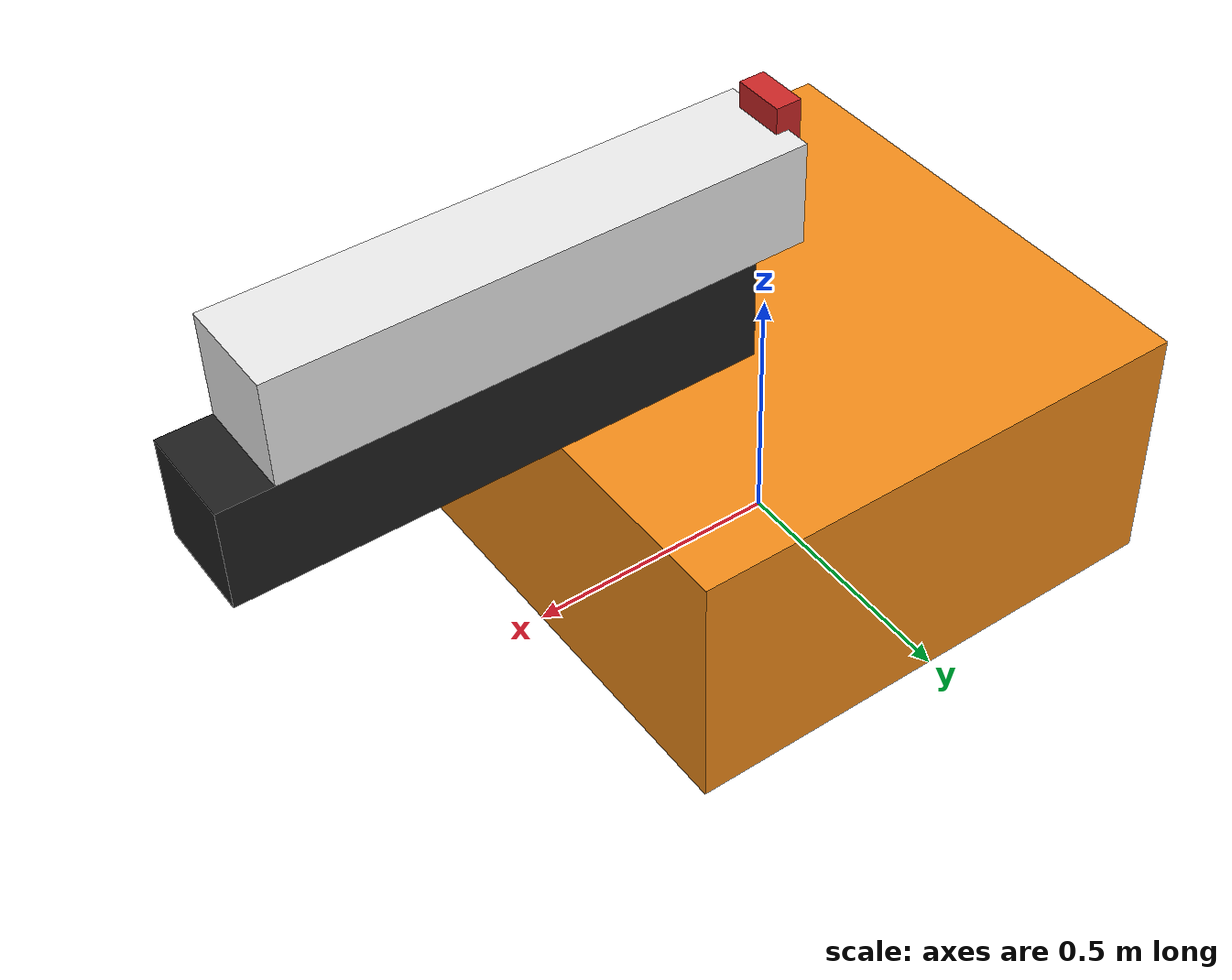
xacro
<?xml version="1.0"?>

<robot xmlns:xacro="http://www.ros.org/wiki/xacro" name="two_dof_arm">

    <xacro:property name="PI" value="3.1415926535897931"/>
    <xacro:property name="mass1" value="10" /> <!-- arbitrary value for mass -->
    <xacro:property name="width1" value="1.0" /> <!-- Square dimensions (widthxwidth) of beams -->
    <xacro:property name="height1" value="0.5" /> <!-- Base Link -->

    <xacro:include filename="$(find two_dof_arm)/urdf/links.xacro"/>
    <xacro:include filename="$(find two_dof_arm)/urdf/camera.xacro"/>
    <xacro:include filename="$(find two_dof_arm)/urdf/colors.gazebo" />

    <link name="world"></link>

    <joint name="base_joint" type="fixed">
        <parent link="world"/>
        <child link="base_link"/>

    </joint>

    <link name="base_link">
        <inertial>
            <origin xyz="0.0 0.0 ${height1/2}" rpy="0.0 0.0 0.0"/>
            <mass value="${mass1}"/>
            <inertia
                ixx="${mass1 / 12.0 * (width1*width1 + height1*height1)}" ixy="0.0" ixz="0.0"
                iyy="${mass1 / 12.0 * (height1*height1 + width1*width1)}" iyz="0.0"
                izz="${mass1 / 12.0 * (width1*width1 + width1*width1)}"/>
        </inertial>
        <visual name="">
            <origin xyz="0.0 0.0 ${height1/2}" rpy="0.0 0.0 0.0"/>
            <geometry>
                <box size="${width1} ${width1} ${height1}"/>
            </geometry>
            <material name="orange"/>
        </visual>
        <collision>
            <origin xyz="0.0 0.0 ${height1/2}" rpy="0.0 0.0 0.0"/>
            <geometry>
                <box size="${width1} ${width1} ${height1}"/>
            </geometry>
        </collision>
    </link>
    <xacro:links />
    <xacro:camera />

</robot>

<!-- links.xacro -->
<robot xmlns:xacro="http://www.ros.org/wiki/xacro" name="two_dof_arm">

    <xacro:macro name="links">
        <xacro:property name="mass2" value="0.5" /> <!-- arbitrary value for mass -->
        <xacro:property name="mass3" value="0.5" /> <!-- arbitrary value for mass -->
        <xacro:property name="width2" value="0.2" /> <!-- Square dimensions (widthxwidth) of beams -->
        <xacro:property name="width3" value="0.2" /> <!-- Square dimensions (widthxwidth) of beams -->
        <xacro:property name="length2" value="1.0" /> <!-- First Link -->
        <xacro:property name="length3" value="1.0" /> <!-- Second Link -->
        <link name="first_link">
            <inertial>
                <origin xyz="0.6 0.0 0.0" rpy="0.0 0.0 0.0"/>
                <mass value="${mass2}"/>
                <inertia
                    ixx="${mass2 / 12.0 * (width2*width2 + width2*width2)}" ixy="0.0" ixz="0.0"
                    iyy="${mass2 / 12.0 * (length2*length2 + width2*width2)}" iyz="0.0"
                    izz="${mass2 / 12.0 * (width2*width2 + length2*length2)}"/>
            </inertial>
            <visual>
                <origin xyz="0.6 0.0 0.0" rpy="0.0 0.0 0.0"/>
                <geometry>
                    <box size="${length2} ${width2} ${width2}"/>
                </geometry>
                <material name="black"/>
            </visual>
            <collision>
                <origin xyz="0.6 0.0 0.0" rpy="0.0 0.0 0.0"/>
                <geometry>
                    <box size="${length2} ${width2} ${width2}"/>
                </geometry>
            </collision>
        </link>
        <joint name="first_joint" type="revolute">
            <origin xyz="0.0 0.0 0.6" rpy="0.0 0.0 0.0"/>
            <parent link="base_link"/>
            <child link="first_link"/>
            <axis xyz="0.0 -1.0 0.0"/>
            <limit lower="0.0" upper="${PI}" effort="5.0" velocity="1.0"/>
        </joint>
        <link name="second_link">
            <inertial>
                <origin xyz="-0.6 0.0 0.1" rpy="0.0 0.0 0.0"/>
                <mass value="${mass3}"/>
                <inertia
                    ixx="${mass3 / 12.0 * (width3*width3 + width3*width3)}" ixy="0.0" ixz="0.0"
                    iyy="${mass3 / 12.0 * (length3*length3 + width3*width3)}" iyz="0.0"
                    izz="${mass3 / 12.0 * (width3*width3 + length3*length3)}"/>
            </inertial>
            <visual>
                <origin xyz="-0.6 0.0 0.0" rpy="0.0 0.0 0.0"/>
                <geometry>
                    <box size="${length3} ${width3} ${width3}"/>
                </geometry>
                <material name="white">
                </material>
            </visual>
            <collision>
                <origin xyz="-0.6 0.0 0.0" rpy="0.0 0.0 0.0"/>
                <geometry>
                    <box size="${length3} ${width3} ${width3}"/>
                </geometry>
            </collision>
        </link>
        <joint name="second_joint" type="revolute">
            <origin xyz="1.1 0.0 0.2" rpy="0.0 0.0 0.0"/>
            <parent link="first_link"/>
            <child link="second_link"/>
            <axis xyz="0.0 1.0 0.0"/>
            <limit lower="0.0" upper="${PI}" effort="5.0" velocity="1.0"/>
        </joint>

        <transmission name="first_joint_transmission">
            <type>transmission_interface/SimpleTransmission</type>
            <joint name="first_joint">
                <hardwareInterface>hardware_interface/PositionJointInterface</hardwareInterface>
            </joint>
            <actuator name="first_servo">
                <mechanicalReduction>1.0</mechanicalReduction>
            </actuator>
        </transmission>

        <transmission name="second_joint_transmission">
            <type>transmission_interface/SimpleTransmission</type>
            <joint name="second_joint">
                <hardwareInterface>hardware_interface/PositionJointInterface</hardwareInterface>
            </joint>
            <actuator name="second_servo">
                <mechanicalReduction>1.0</mechanicalReduction>
            </actuator>
        </transmission>
    </xacro:macro>
</robot>

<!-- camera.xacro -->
<robot xmlns:xacro="http://www.ros.org/wiki/xacro" name="two_dof_arm">

    <xacro:macro name="camera" >
        <xacro:property name="camera_width" value = "0.1"/>
        <xacro:property name="camera_length" value = "0.05"/>
        <xacro:property name="camera_mass" value = "0.05"/>

        <link name="camera_link">
            <inertial>
                <origin xyz="0.0 0.0 0.0" rpy="0.0 0.0 0.0"/>
                <mass value="${camera_mass}"/>
                <inertia
                ixx="${mass1 / 12.0 * (camera_width*camera_width + camera_length*camera_length)}" ixy="0.0" ixz="0.0"
                iyy="${mass1 / 12.0 * (camera_length*camera_length + camera_width*camera_width)}" iyz="0.0"
                izz="${mass1 / 12.0 * (camera_width*camera_width + camera_width*camera_width)}"/>
            </inertial>
            <visual>
                <origin xyz="0.0 0.0 0.0" rpy="0.0 0.0 0.0"/>
                <geometry>
                    <box size="${camera_width} ${camera_width} ${camera_length}"/>
                </geometry>
                <material name="red">
                </material>
            </visual>
            <collision>
                <origin xyz="0.0 0.0 0.0" rpy="0.0 0.0 0.0"/>
                <geometry>
                    <box size="${camera_width} ${camera_width} ${camera_length}"/>
                </geometry>
            </collision>
        </link>

        <joint name="camera_joint" type="revolute">
            <origin xyz="-1.1 0.0 0.1" rpy="0.0 ${PI/2} 0.0"/>
            <parent link="second_link"/>
            <child link="camera_link"/>
            <axis xyz="-1.0 0.0 0.0"/>
            <limit lower="0.0" upper="0.0" effort="1.0" velocity="0.5"/>
        </joint>

    </xacro:macro>

</robot>
